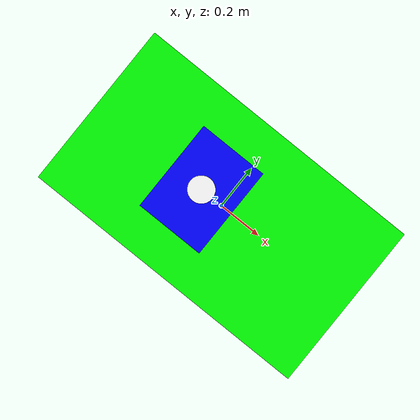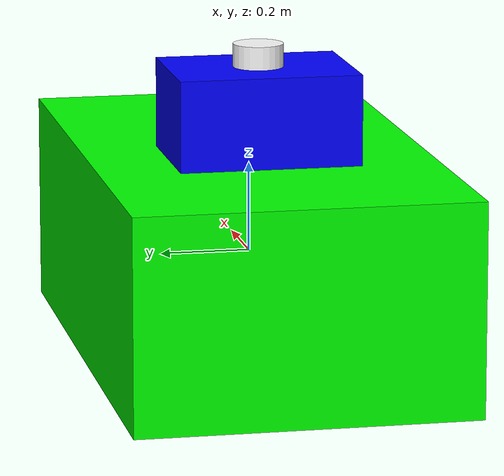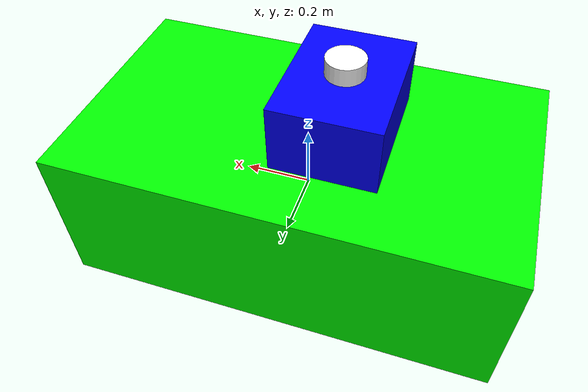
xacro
<?xml version="1.0"?>
<robot xmlns:xacro="http://ros.org/wiki/xacro" name="grandslam">

  <!-- COLOR -->
    <material name="white">
        <color rgba="1 1 1 1" />
    </material>

    <material name="red">
        <color rgba="1 0 0 1" />
    </material>

    <material name="blue">
       <color rgba="0 1 0 1" />
    </material>

    <material name="green">
        <color rgba="0 0 1 1" />
    </material>
  <!-- Base_footprint -->
  <link name = "base_footprint">
  </link>

  <!-- base_link LINK -->
  <joint name="base_link_joint" type="fixed">
    <parent link="base_footprint"/>
    <child link="base_link"/>
  </joint>

  <!--sensor_box LINK-->
  <joint name="sensor_box_link" type="fixed">
    <origin xyz="-0.1 0.0 0.335" rpy="0.0 0.0 0.0"/>
    <parent link="base_link"/>
    <child link ="sensor_box"/>
  </joint>

  <!--laser LINK-->
  <joint name="laser_link" type="fixed">
    <origin xyz="0.0 0.0 0.1255"/>
    <parent link="sensor_box"/>
    <child link ="laser"/>
  </joint>

  <!--imu LINK-->
  <joint name="imu_link" type="fixed">
    <parent link="sensor_box"/>
    <child link ="imu"/>
  </joint>

  <!-- base_link -->
  <link name="base_link">
    <visual>
      <geometry>
        <box size="1.30 0.75 0.47"/>
      </geometry>
      <material name="blue"/>
    </visual>
  </link>

  <!-- sensor_box -->
  <link name="sensor_box">
    <visual>
      <geometry>
        <box size="0.3 0.4 0.2"/>
      </geometry>
      <material name="green"/>
    </visual>
  </link>

  <!-- laser -->
  <link name="laser" type="fixed">
    <visual>
      <geometry>
        <cylinder radius="0.0555" length="0.051"/>
      </geometry>
      <material name="white"/>
    </visual>
  </link>

  <!--imu_link-->
  <link name="imu">
  </link>

</robot>
